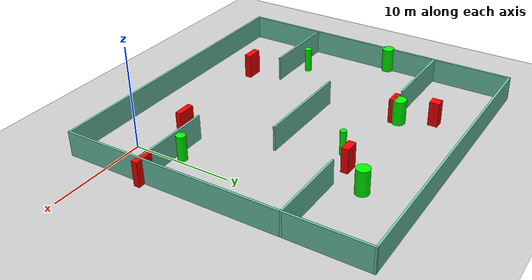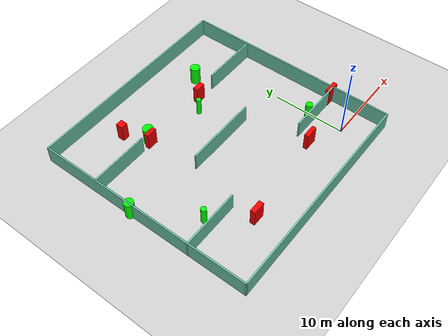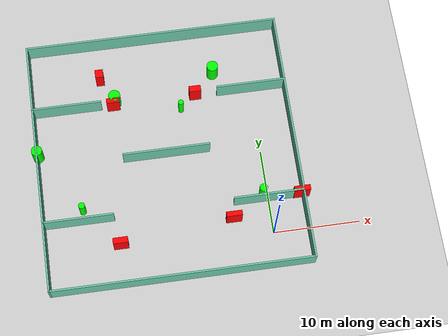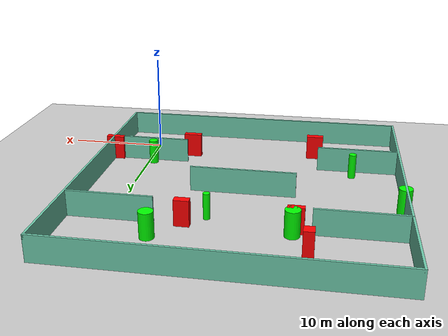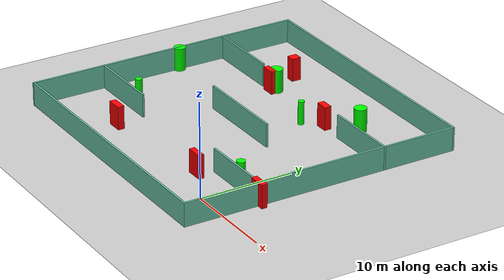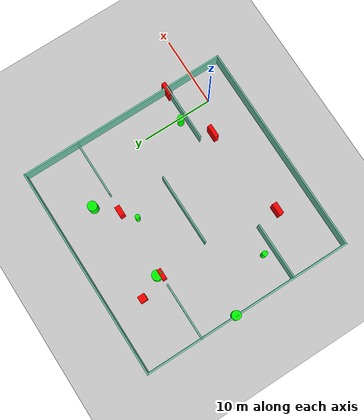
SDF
<sdf version="1.7">
 <world name="default">
  <light name="sun" type="directional">
   <pose>0 0 10 0 -0 0</pose>
   <diffuse>0.8 0.8 0.8 1</diffuse>
   <specular>0.2 0.2 0.2 1</specular>
   <attenuation>
    <range>1000</range>
    <constant>0.9</constant>
    <linear>0.01</linear>
    <quadratic>0.001</quadratic>
   </attenuation>
   <direction>-0.5 0.1 -0.9</direction>
   <spot><inner_angle>0</inner_angle><outer_angle>0</outer_angle><falloff>0</falloff></spot>
  </light>
  <model name="ground_plane">
   <static>1</static>
   <link name="link">
    <collision name="collision">
     <geometry><plane><normal>0 0 1</normal><size>100 100</size></plane></geometry>
     <surface>
      <contact><collide_bitmask>65535</collide_bitmask></contact>
      <friction><ode><mu>100</mu><mu2>50</mu2></ode></friction>
     </surface>
    </collision>
    <visual name="visual">
     <cast_shadows>0</cast_shadows>
     <geometry><plane><normal>0 0 1</normal><size>100 100</size></plane></geometry>
     <material>
      <script><uri>file://media/materials/scripts/gazebo.material</uri><name>Gazebo/Grey</name></script>
     </material>
    </visual>
   </link>
  </model>
  <gravity>0 0 -9.8</gravity>
  <magnetic_field>6e-06 2.3e-05 -4.2e-05</magnetic_field>
  <atmosphere type="adiabatic"/>
  <physics type="ode">
   <max_step_size>0.001</max_step_size>
   <real_time_factor>1</real_time_factor>
   <real_time_update_rate>1000</real_time_update_rate>
  </physics>
  <scene><ambient>0.4 0.4 0.4 1</ambient><background>0.7 0.7 0.7 1</background><shadows>1</shadows></scene>
  <spherical_coordinates>
   <surface_model>EARTH_WGS84</surface_model>
   <latitude_deg>0</latitude_deg>
   <longitude_deg>0</longitude_deg>
   <elevation>0</elevation>
   <heading_deg>0</heading_deg>
  </spherical_coordinates>
  <model name="my_base_walls">
   <link name="Wall_10">
    <collision name="Wall_10_Collision">
     <geometry><box><size>8.2 0.2 2.5</size></box></geometry>
     <pose>0 0 1.25 0 -0 0</pose>
    </collision>
    <visual name="Wall_10_Visual">
     <pose>0 0 1.25 0 -0 0</pose>
     <geometry><box><size>8.2 0.2 2.5</size></box></geometry>
     <material>
      <script><uri>file://media/materials/scripts/gazebo.material</uri><name>Gazebo/Grey</name></script>
      <ambient>0.435294 0.796078 0.67451 1</ambient>
     </material>
     <meta><layer>0</layer></meta>
    </visual>
    <pose>-11 -7 0 0 -0 0</pose>
   </link>
   <link name="Wall_12">
    <collision name="Wall_12_Collision">
     <geometry><box><size>8.2 0.2 2.5</size></box></geometry>
     <pose>0 0 1.25 0 -0 0</pose>
    </collision>
    <visual name="Wall_12_Visual">
     <pose>0 0 1.25 0 -0 0</pose>
     <geometry><box><size>8.2 0.2 2.5</size></box></geometry>
     <material>
      <script><uri>file://media/materials/scripts/gazebo.material</uri><name>Gazebo/Grey</name></script>
      <ambient>0.435294 0.796078 0.67451 1</ambient>
     </material>
     <meta><layer>0</layer></meta>
    </visual>
    <pose>-11 7 0 0 -0 0</pose>
   </link>
   <link name="Wall_14">
    <collision name="Wall_14_Collision">
     <geometry><box><size>8.2 0.2 2.5</size></box></geometry>
     <pose>0 0 1.25 0 -0 0</pose>
    </collision>
    <visual name="Wall_14_Visual">
     <pose>0 0 1.25 0 -0 0</pose>
     <geometry><box><size>8.2 0.2 2.5</size></box></geometry>
     <material>
      <script><uri>file://media/materials/scripts/gazebo.material</uri><name>Gazebo/Grey</name></script>
      <ambient>0.435294 0.796078 0.67451 1</ambient>
     </material>
     <meta><layer>0</layer></meta>
    </visual>
    <pose>11 7 0 0 -0 3.14159</pose>
   </link>
   <link name="Wall_16">
    <collision name="Wall_16_Collision">
     <geometry><box><size>10.2 0.2 2.5</size></box></geometry>
     <pose>0 0 1.25 0 -0 0</pose>
    </collision>
    <visual name="Wall_16_Visual">
     <pose>0 0 1.25 0 -0 0</pose>
     <geometry><box><size>10.2 0.2 2.5</size></box></geometry>
     <material>
      <script><uri>file://media/materials/scripts/gazebo.material</uri><name>Gazebo/Grey</name></script>
      <ambient>0.435294 0.796078 0.67451 1</ambient>
     </material>
     <meta><layer>0</layer></meta>
    </visual>
    <pose>0 0 0 0 -0 3.14159</pose>
   </link>
   <link name="Wall_2">
    <collision name="Wall_2_Collision">
     <geometry><box><size>30.2 0.2 2.5</size></box></geometry>
     <pose>0 0 1.25 0 -0 0</pose>
    </collision>
    <visual name="Wall_2_Visual">
     <pose>0 0 1.25 0 -0 0</pose>
     <geometry><box><size>30.2 0.2 2.5</size></box></geometry>
     <material>
      <script><uri>file://media/materials/scripts/gazebo.material</uri><name>Gazebo/Grey</name></script>
      <ambient>0.435294 0.796078 0.67451 1</ambient>
     </material>
     <meta><layer>0</layer></meta>
    </visual>
    <pose>0 -15 0 0 -0 3.14159</pose>
   </link>
   <link name="Wall_3">
    <collision name="Wall_3_Collision">
     <geometry><box><size>30.2 0.2 2.5</size></box></geometry>
     <pose>0 0 1.25 0 -0 0</pose>
    </collision>
    <visual name="Wall_3_Visual">
     <pose>0 0 1.25 0 -0 0</pose>
     <geometry><box><size>30.2 0.2 2.5</size></box></geometry>
     <material>
      <script><uri>file://media/materials/scripts/gazebo.material</uri><name>Gazebo/Grey</name></script>
      <ambient>0.435294 0.796078 0.67451 1</ambient>
     </material>
     <meta><layer>0</layer></meta>
    </visual>
    <pose>-15 0 0 0 -0 1.5708</pose>
   </link>
   <link name="Wall_4">
    <collision name="Wall_4_Collision">
     <geometry><box><size>30.2 0.2 2.5</size></box></geometry>
     <pose>0 0 1.25 0 -0 0</pose>
    </collision>
    <visual name="Wall_4_Visual">
     <pose>0 0 1.25 0 -0 0</pose>
     <geometry><box><size>30.2 0.2 2.5</size></box></geometry>
     <material>
      <script><uri>file://media/materials/scripts/gazebo.material</uri><name>Gazebo/Grey</name></script>
      <ambient>0.435294 0.796078 0.67451 1</ambient>
     </material>
     <meta><layer>0</layer></meta>
    </visual>
    <pose>0 15 0 0 -0 0</pose>
   </link>
   <link name="Wall_6">
    <collision name="Wall_6_Collision">
     <geometry><box><size>30.2 0.2 2.5</size></box></geometry>
     <pose>0 0 1.25 0 -0 0</pose>
    </collision>
    <visual name="Wall_6_Visual">
     <pose>0 0 1.25 0 -0 0</pose>
     <geometry><box><size>30.2 0.2 2.5</size></box></geometry>
     <material>
      <script><uri>file://media/materials/scripts/gazebo.material</uri><name>Gazebo/Grey</name></script>
      <ambient>0.435294 0.796078 0.67451 1</ambient>
     </material>
     <meta><layer>0</layer></meta>
    </visual>
    <pose>15 0 0 0 -0 1.5708</pose>
   </link>
   <link name="Wall_8">
    <collision name="Wall_8_Collision">
     <geometry><box><size>8.2 0.2 2.5</size></box></geometry>
     <pose>0 0 1.25 0 -0 0</pose>
    </collision>
    <visual name="Wall_8_Visual">
     <pose>0 0 1.25 0 -0 0</pose>
     <geometry><box><size>8.2 0.2 2.5</size></box></geometry>
     <material>
      <script><uri>file://media/materials/scripts/gazebo.material</uri><name>Gazebo/Grey</name></script>
      <ambient>0.435294 0.796078 0.67451 1</ambient>
     </material>
     <meta><layer>0</layer></meta>
    </visual>
    <pose>11 -7 0 0 -0 3.14159</pose>
   </link>
   <static>1</static>
   <pose>-11 11 0 0 -0 0</pose>
  </model>
  <model name="cylinder1">
   <static>1</static>
   <link name="link">
    <inertial>
     <mass>1</mass>
     <inertia><ixx>0.5</ixx><ixy>0</ixy><ixz>0</ixz><iyy>0.5</iyy><iyz>0</iyz><izz>1</izz></inertia>
    </inertial>
    <collision name="collision">
     <geometry><cylinder><radius>0.697650959393924</radius><length>2.5</length></cylinder></geometry>
    </collision>
    <visual name="visual">
     <geometry><cylinder><radius>0.697650959393924</radius><length>2.5</length></cylinder></geometry>
     <material>
      <ambient>0 1 0 1</ambient>
      <diffuse>0 1 0 1</diffuse>
      <specular>0.1 0.1 0.1 1</specular>
      <emissive>0 0 0 0</emissive>
     </material>
    </visual>
   </link>
   <pose>-16.26079754784124 18.495864327449745 1.25 0 0 0</pose>
  </model>
  <model name="cylinder2">
   <static>1</static>
   <link name="link">
    <inertial>
     <mass>1</mass>
     <inertia><ixx>0.5</ixx><ixy>0</ixy><ixz>0</ixz><iyy>0.5</iyy><iyz>0</iyz><izz>1</izz></inertia>
    </inertial>
    <collision name="collision">
     <geometry><cylinder><radius>0.3188494864005554</radius><length>2.5</length></cylinder></geometry>
    </collision>
    <visual name="visual">
     <geometry><cylinder><radius>0.3188494864005554</radius><length>2.5</length></cylinder></geometry>
     <material>
      <ambient>0 1 0 1</ambient>
      <diffuse>0 1 0 1</diffuse>
      <specular>0.1 0.1 0.1 1</specular>
      <emissive>0 0 0 0</emissive>
     </material>
    </visual>
   </link>
   <pose>-8.568390961524184 16.59123572917916 1.25 0 0 0</pose>
  </model>
  <model name="cylinder3">
   <static>1</static>
   <link name="link">
    <inertial>
     <mass>1</mass>
     <inertia><ixx>0.5</ixx><ixy>0</ixy><ixz>0</ixz><iyy>0.5</iyy><iyz>0</iyz><izz>1</izz></inertia>
    </inertial>
    <collision name="collision">
     <geometry><cylinder><radius>0.46318108871382957</radius><length>2.5</length></cylinder></geometry>
    </collision>
    <visual name="visual">
     <geometry><cylinder><radius>0.46318108871382957</radius><length>2.5</length></cylinder></geometry>
     <material>
      <ambient>0 1 0 1</ambient>
      <diffuse>0 1 0 1</diffuse>
      <specular>0.1 0.1 0.1 1</specular>
      <emissive>0 0 0 0</emissive>
     </material>
    </visual>
   </link>
   <pose>-0.5468483403557656 4.7786167514985785 1.25 0 0 0</pose>
  </model>
  <model name="cylinder4">
   <static>1</static>
   <link name="link">
    <inertial>
     <mass>1</mass>
     <inertia><ixx>0.5</ixx><ixy>0</ixy><ixz>0</ixz><iyy>0.5</iyy><iyz>0</iyz><izz>1</izz></inertia>
    </inertial>
    <collision name="collision">
     <geometry><cylinder><radius>0.6631793900820361</radius><length>2.5</length></cylinder></geometry>
    </collision>
    <visual name="visual">
     <geometry><cylinder><radius>0.6631793900820361</radius><length>2.5</length></cylinder></geometry>
     <material>
      <ambient>0 1 0 1</ambient>
      <diffuse>0 1 0 1</diffuse>
      <specular>0.1 0.1 0.1 1</specular>
      <emissive>0 0 0 0</emissive>
     </material>
    </visual>
   </link>
   <pose>-4.242919870147428 20.737002608345502 1.25 0 0 0</pose>
  </model>
  <model name="cylinder5">
   <static>1</static>
   <link name="link">
    <inertial>
     <mass>1</mass>
     <inertia><ixx>0.5</ixx><ixy>0</ixy><ixz>0</ixz><iyy>0.5</iyy><iyz>0</iyz><izz>1</izz></inertia>
    </inertial>
    <collision name="collision">
     <geometry><cylinder><radius>0.6303050318029347</radius><length>2.5</length></cylinder></geometry>
    </collision>
    <visual name="visual">
     <geometry><cylinder><radius>0.6303050318029347</radius><length>2.5</length></cylinder></geometry>
     <material>
      <ambient>0 1 0 1</ambient>
      <diffuse>0 1 0 1</diffuse>
      <specular>0.1 0.1 0.1 1</specular>
      <emissive>0 0 0 0</emissive>
     </material>
    </visual>
   </link>
   <pose>-25.93451437593438 12.769929959514894 1.25 0 0 0</pose>
  </model>
  <model name="cylinder6">
   <static>1</static>
   <link name="link">
    <inertial>
     <mass>1</mass>
     <inertia><ixx>0.5</ixx><ixy>0</ixy><ixz>0</ixz><iyy>0.5</iyy><iyz>0</iyz><izz>1</izz></inertia>
    </inertial>
    <collision name="collision">
     <geometry><cylinder><radius>0.37128488156337475</radius><length>2.5</length></cylinder></geometry>
    </collision>
    <visual name="visual">
     <geometry><cylinder><radius>0.37128488156337475</radius><length>2.5</length></cylinder></geometry>
     <material>
      <ambient>0 1 0 1</ambient>
      <diffuse>0 1 0 1</diffuse>
      <specular>0.1 0.1 0.1 1</specular>
      <emissive>0 0 0 0</emissive>
     </material>
    </visual>
   </link>
   <pose>-21.418207884653228 5.426990689585468 1.25 0 0 0</pose>
  </model>
  <model name="box1">
   <static>1</static>
   <link name="link">
    <inertial>
     <mass>1</mass>
     <inertia><ixx>0.083</ixx><ixy>0</ixy><ixz>0</ixz><iyy>0.083</iyy><iyz>0</iyz><izz>0.083</izz></inertia>
    </inertial>
    <collision name="collision">
     <geometry><box><size>1.7093193021628763 0.6821893334241869 2.5</size></box></geometry>
    </collision>
    <visual name="visual">
     <geometry><box><size>1.7093193021628763 0.6821893334241869 2.5</size></box></geometry>
     <material>
      <ambient>1 0 0 1</ambient>
      <diffuse>1 0 0 1</diffuse>
      <specular>0.1 0.1 0.1 1</specular>
      <emissive>0 0 0 0</emissive>
     </material>
    </visual>
    <sensor name="my_contact" type="contact">
     <contact><collision>box_collision</collision><topic>__default_topic__</topic></contact>
    </sensor>
   </link>
   <pose>-17.505994926460986 0.7744348461591826 1.25 0 0 0</pose>
  </model>
  <model name="box2">
   <static>1</static>
   <link name="link">
    <inertial>
     <mass>1</mass>
     <inertia><ixx>0.083</ixx><ixy>0</ixy><ixz>0</ixz><iyy>0.083</iyy><iyz>0</iyz><izz>0.083</izz></inertia>
    </inertial>
    <collision name="collision">
     <geometry><box><size>1.511506372652701 0.5908480919308616 2.5</size></box></geometry>
    </collision>
    <visual name="visual">
     <geometry><box><size>1.511506372652701 0.5908480919308616 2.5</size></box></geometry>
     <material>
      <ambient>1 0 0 1</ambient>
      <diffuse>1 0 0 1</diffuse>
      <specular>0.1 0.1 0.1 1</specular>
      <emissive>0 0 0 0</emissive>
     </material>
    </visual>
    <sensor name="my_contact" type="contact">
     <contact><collision>box_collision</collision><topic>__default_topic__</topic></contact>
    </sensor>
   </link>
   <pose>-16.50421647514225 17.914018677789326 1.25 0 0 0</pose>
  </model>
  <model name="box3">
   <static>1</static>
   <link name="link">
    <inertial>
     <mass>1</mass>
     <inertia><ixx>0.083</ixx><ixy>0</ixy><ixz>0</ixz><iyy>0.083</iyy><iyz>0</iyz><izz>0.083</izz></inertia>
    </inertial>
    <collision name="collision">
     <geometry><box><size>1.3905887065608615 0.7288626026646948 2.5</size></box></geometry>
    </collision>
    <visual name="visual">
     <geometry><box><size>1.3905887065608615 0.7288626026646948 2.5</size></box></geometry>
     <material>
      <ambient>1 0 0 1</ambient>
      <diffuse>1 0 0 1</diffuse>
      <specular>0.1 0.1 0.1 1</specular>
      <emissive>0 0 0 0</emissive>
     </material>
    </visual>
    <sensor name="my_contact" type="contact">
     <contact><collision>box_collision</collision><topic>__default_topic__</topic></contact>
    </sensor>
   </link>
   <pose>-6.6907227525204735 18.10484490958484 1.25 0 0 0</pose>
  </model>
  <model name="box4">
   <static>1</static>
   <link name="link">
    <inertial>
     <mass>1</mass>
     <inertia><ixx>0.083</ixx><ixy>0</ixy><ixz>0</ixz><iyy>0.083</iyy><iyz>0</iyz><izz>0.083</izz></inertia>
    </inertial>
    <collision name="collision">
     <geometry><box><size>0.9439004094928198 0.9866511276341005 2.5</size></box></geometry>
    </collision>
    <visual name="visual">
     <geometry><box><size>0.9439004094928198 0.9866511276341005 2.5</size></box></geometry>
     <material>
      <ambient>1 0 0 1</ambient>
      <diffuse>1 0 0 1</diffuse>
      <specular>0.1 0.1 0.1 1</specular>
      <emissive>0 0 0 0</emissive>
     </material>
    </visual>
    <sensor name="my_contact" type="contact">
     <contact><collision>box_collision</collision><topic>__default_topic__</topic></contact>
    </sensor>
   </link>
   <pose>-17.737985290731146 21.58128236954597 1.25 0 0 0</pose>
  </model>
  <model name="box5">
   <static>1</static>
   <link name="link">
    <inertial>
     <mass>1</mass>
     <inertia><ixx>0.083</ixx><ixy>0</ixy><ixz>0</ixz><iyy>0.083</iyy><iyz>0</iyz><izz>0.083</izz></inertia>
    </inertial>
    <collision name="collision">
     <geometry><box><size>1.8636583255142476 0.5925594613140472 2.5</size></box></geometry>
    </collision>
    <visual name="visual">
     <geometry><box><size>1.8636583255142476 0.5925594613140472 2.5</size></box></geometry>
     <material>
      <ambient>1 0 0 1</ambient>
      <diffuse>1 0 0 1</diffuse>
      <specular>0.1 0.1 0.1 1</specular>
      <emissive>0 0 0 0</emissive>
     </material>
    </visual>
    <sensor name="my_contact" type="contact">
     <contact><collision>box_collision</collision><topic>__default_topic__</topic></contact>
    </sensor>
   </link>
   <pose>3.8369911879184855 4.127673843872324 1.25 0 0 0</pose>
  </model>
  <model name="box6">
   <static>1</static>
   <link name="link">
    <inertial>
     <mass>1</mass>
     <inertia><ixx>0.083</ixx><ixy>0</ixy><ixz>0</ixz><iyy>0.083</iyy><iyz>0</iyz><izz>0.083</izz></inertia>
    </inertial>
    <collision name="collision">
     <geometry><box><size>1.8192706371420462 0.5811851332091582 2.5</size></box></geometry>
    </collision>
    <visual name="visual">
     <geometry><box><size>1.8192706371420462 0.5811851332091582 2.5</size></box></geometry>
     <material>
      <ambient>1 0 0 1</ambient>
      <diffuse>1 0 0 1</diffuse>
      <specular>0.1 0.1 0.1 1</specular>
      <emissive>0 0 0 0</emissive>
     </material>
    </visual>
    <sensor name="my_contact" type="contact">
     <contact><collision>box_collision</collision><topic>__default_topic__</topic></contact>
    </sensor>
   </link>
   <pose>-4.3246247137276885 2.1530773591580754 1.25 0 0 0</pose>
  </model>
 </world>
</sdf>
